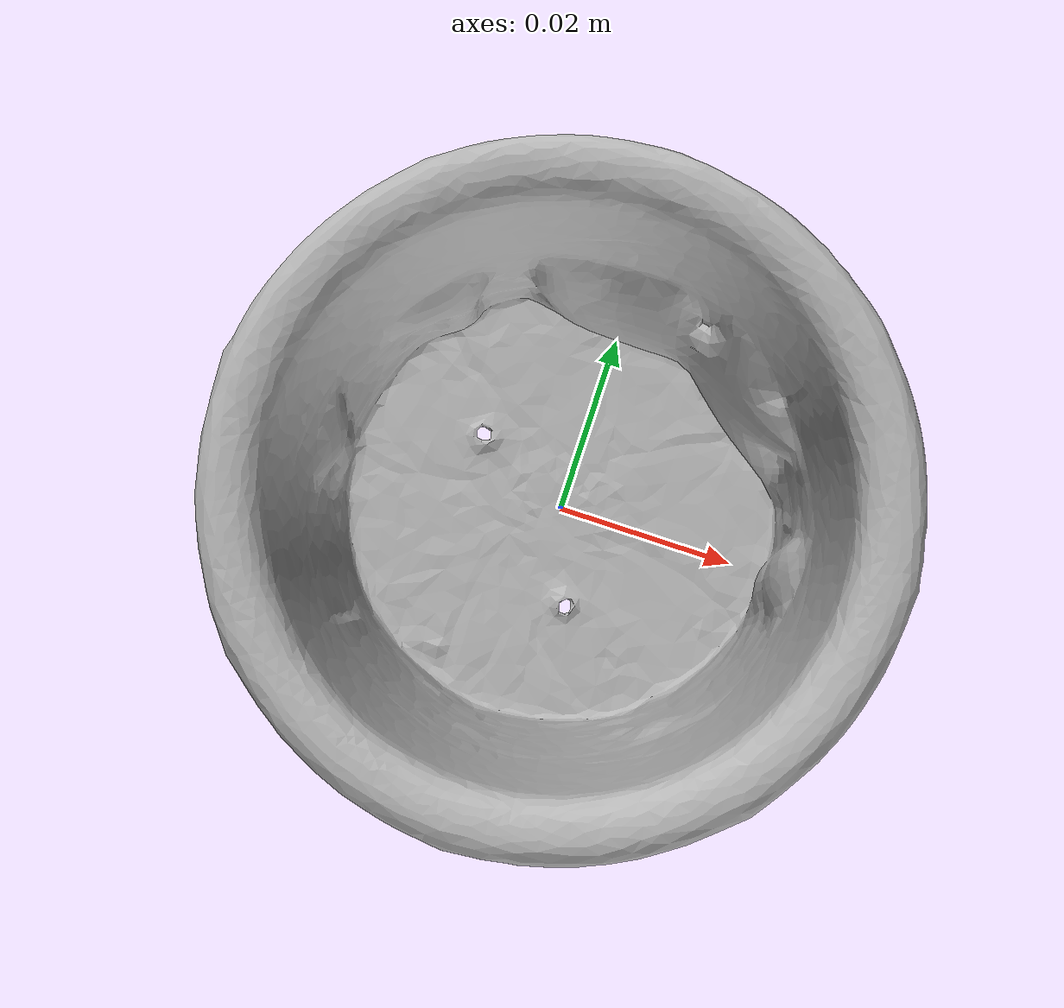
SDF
<?xml version="1.0" ?>
<sdf version='1.8'>
  <model name='ycb_065-b_cups'>
    <link name='body'>
      <inertial>
        <mass>0.035</mass>
        <pose>0.00108944977 0.00253068648 0.0301734195 0 0 0</pose>
        <inertia>
          <ixx>2.23752972155e-05</ixx>
          <ixy>-1.56873154999e-07</ixy>
          <ixz>1.35957415073e-07</ixz>
          <iyy>2.17942266869e-05</iyy>
          <iyz>6.5139614805e-07</iyz>
          <izz>1.95705335745e-05</izz>
        </inertia>
      </inertial>
      <visual name='ycb_065-b_cups_visual'>
        <pose>0.027837 0.056185 0.000232 0 0 0</pose>
        <geometry>
          <mesh>
            <uri>model://ycb_065-b_cups/meshes/textured.dae</uri>
          </mesh>
        </geometry>
      </visual>
      <collision name='ycb_065-b_cups_collision'>
        <pose>0.027837 0.056185 0.000232 0 0 0</pose>
        <geometry>
          <mesh>
            <uri>model://ycb_065-b_cups/meshes/nontextured.stl</uri>
          </mesh>
        </geometry>
        <max_contacts>10</max_contacts>
        <surface>
          <contact>
            <ode>
              <kp>1e15</kp>
              <kd>1e13</kd>
            </ode>
          </contact>
        </surface>
      </collision>
    </link>
  </model>
</sdf>
